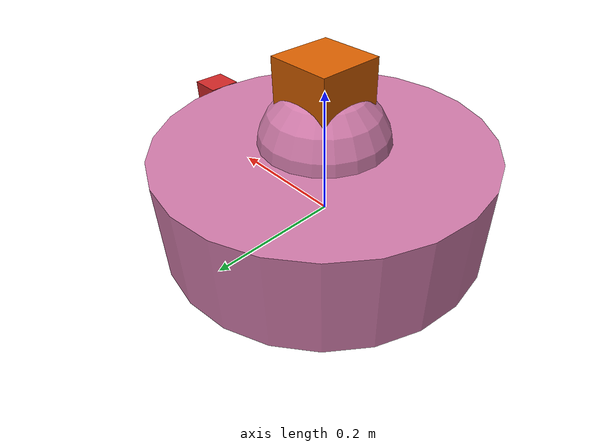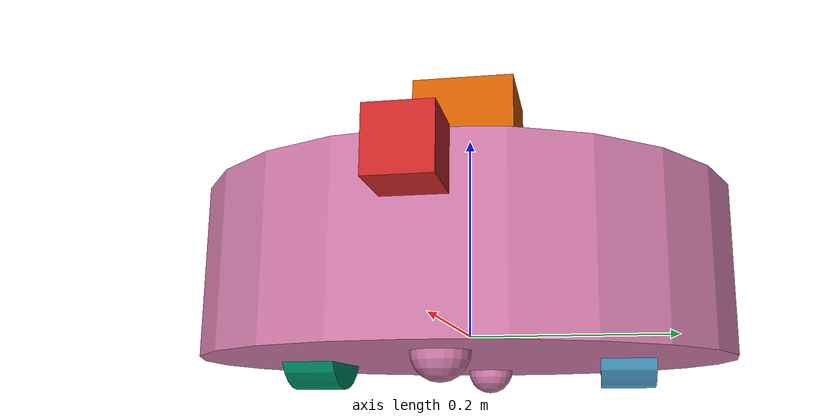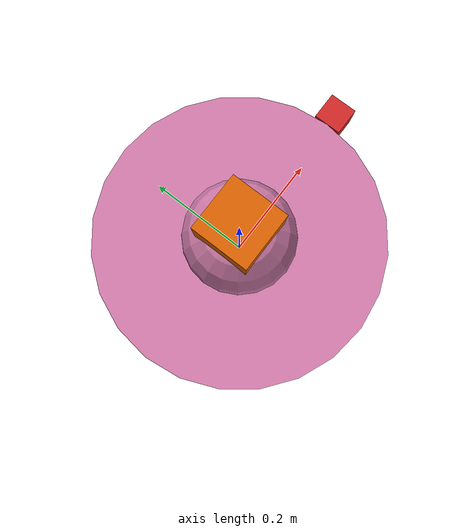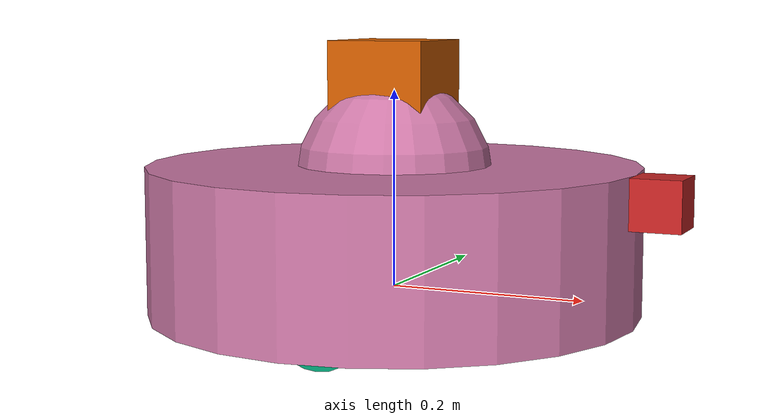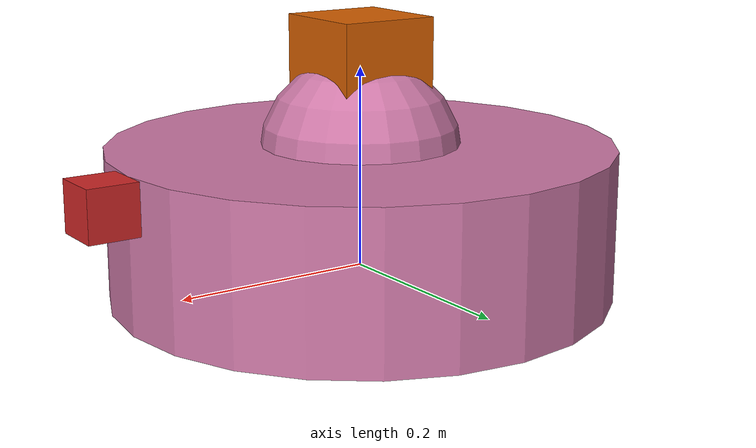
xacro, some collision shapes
<?xml version='1.0'?>
<robot name="udacity_bot"
    xmlns:xacro="http://www.ros.org/wiki/xacro">
    <xacro:include filename="$(find slam_project)/urdf/udacity_bot.gazebo"/>
    <link name="robot_footprint"></link>
    <joint name="robot_footprint_joint" type="fixed">
        <origin xyz="0 0 0" rpy="0 0 0"/>
        <parent link="robot_footprint"/>
        <child link="chassis"/>
    </joint>
    <!-- Left wheel -->
    <joint type="continuous" name="left_wheel_hinge">
        <origin xyz="0 0.15 0" rpy="0 0 0"/>
        <child link="left_wheel"/>
        <parent link="chassis"/>
        <axis xyz="0 1 0" rpy="0 0 0"/>
        <limit effort="10000" velocity="1000"/>
        <dynamics damping="1.0" friction="1.0"/>
    </joint>
    <link name='left_wheel'>
        <inertial>
            <mass value="5.0"/>
            <origin xyz="0.0 0 0" rpy=" 0 1.5707 1.5707"/>
            <inertia
          ixx="0.1" ixy="0" ixz="0"
          iyy="0.1" iyz="0"
          izz="0.1"
      />
        </inertial>
        <collision name='left_wheel_collision'>
            <origin xyz="0 0 0" rpy=" 0 1.5707 1.5707"/>
            <geometry>
                <cylinder radius="0.05" length="0.05"/>
            </geometry>
        </collision>
        <visual name='left_wheel_visual'>
            <origin xyz="0 0 0" rpy=" 0 1.5707 1.5707"/>
            <geometry>
                <cylinder radius="0.05" length="0.05"/>
            </geometry>
        </visual>
    </link>
    <!-- Right wheel -->
    <joint type="continuous" name="right_wheel_hinge">
        <origin xyz="0 -0.15 0" rpy="0 0 0"/>
        <child link="right_wheel"/>
        <parent link="chassis"/>
        <axis xyz="0 1 0" rpy="0 0 0"/>
        <limit effort="10000" velocity="1000"/>
        <dynamics damping="1.0" friction="1.0"/>
    </joint>
    <link name='right_wheel'>
        <inertial>
            <mass value="5.0"/>
            <origin xyz="0.0 0 0" rpy=" 0 1.5707 1.5707"/>
            <inertia
          ixx="0.1" ixy="0" ixz="0"
          iyy="0.1" iyz="0"
          izz="0.1"
      />
        </inertial>
        <collision name='right_wheel_collision'>
            <origin xyz="0 0 0" rpy=" 0 1.5707 1.5707"/>
            <geometry>
                <cylinder radius="0.05" length="0.05"/>
            </geometry>
        </collision>
        <visual name='right_wheel_visual'>
            <origin xyz="0 0 0" rpy=" 0 1.5707 1.5707"/>
            <geometry>
                <cylinder radius="0.05" length="0.05"/>
            </geometry>
        </visual>
    </link>
    <!-- Camera -->
    <joint type="fixed" name="camera_joint">
        <origin xyz="0.275 0 0.1" rpy="0 0 0"/>
        <child link="camera"/>
        <parent link="chassis"/>
    </joint>

    <link name="camera_rgbd_frame"></link>
    <joint name="camera_rgbd_joint" type="fixed">
        <origin rpy="-${pi/2} 0 -${pi/2}"/>
        <parent link="camera"/>
        <child link="camera_rgbd_frame"/>
    </joint>

    <link name='camera'>
        <inertial>
            <mass value="0.1"/>
            <origin xyz="0.0 0 0" rpy=" 0 0 0"/>
            <inertia
          ixx="1e-6" ixy="0" ixz="0"
          iyy="1e-6" iyz="0"
          izz="1e-6"
      />
        </inertial>
        <collision name='camera_collision'>
            <origin xyz="0 0 0" rpy=" 0 0 0"/>
            <geometry>
                <box size="0.05 0.05 0.05"/>
            </geometry>
        </collision>
        <visual name='camera_visual'>
            <origin xyz="0 0 0" rpy=" 0 0 0"/>
            <geometry>
                <box size="0.05 0.05 0.05"/>
            </geometry>
        </visual>
    </link>
    <!-- Laser scanner -->
    <joint type="fixed" name="hokuyo_joint">
        <origin xyz="0 0 0.20" rpy="0 0 0"/>
        <child link="hokuyo"/>
        <parent link="chassis"/>
    </joint>
    <link name='hokuyo'>
        <inertial>
            <mass value="0.1"/>
            <origin xyz="0.0 0 0" rpy=" 0 0 0"/>
            <inertia
          ixx="1e-6" ixy="0" ixz="0"
          iyy="1e-6" iyz="0"
          izz="1e-6"
      />
        </inertial>
        <collision name='hokuyo_collision'>
            <origin xyz="0 0 0" rpy=" 0 0 0"/>
            <geometry>
                <box size="0.1 0.1 0.1"/>
            </geometry>
        </collision>
        <visual name='hokuyo_visual'>
            <origin xyz="0 0 0" rpy=" 0 0 0"/>
            <geometry>
                <mesh filename="package://slam_project/meshes/hokuyo.dae"/>
            </geometry>
        </visual>
    </link>
    <!-- Chassis -->
    <link name='chassis'>
        <pose>0 0 0.1 0 0 0</pose>
        <inertial>
            <mass value="15.0"/>
            <origin xyz="0.0 0 0" rpy=" 0 0 0"/>
            <inertia
          ixx="0.1" ixy="0" ixz="0"
          iyy="0.1" iyz="0"
          izz="0.1"
      />
        </inertial>
        <collision name='chassis_collision'>
            <origin xyz="0 0 0.05" rpy=" 0 0 0"/>
            <geometry>
                <cylinder radius="0.25" length="0.15"/>
            </geometry>
        </collision>
        <visual name='chassis_visual'>
            <origin xyz="0 0 0.05" rpy=" 0 0 0"/>
            <geometry>
                <cylinder radius="0.25" length="0.15"/>
            </geometry>
        </visual>
        <collision name='chassis_dome_collision'>
            <origin xyz="0 0 0.1125" rpy=" 0 0 0"/>
            <geometry>
                <sphere radius="0.1"/>
            </geometry>
        </collision>
        <visual name='chassis_dome_visual'>
            <origin xyz="0 0 0.1125" rpy=" 0 0 0"/>
            <geometry>
                <sphere radius="0.1"/>
            </geometry>
        </visual>
        <collision name='back_caster_collision'>
            <origin xyz="-0.15 0 -0.025" rpy=" 0 0 0"/>
            <geometry>
                <sphere radius="0.02499"/>
            </geometry>
        </collision>
        <visual name='back_caster_visual'>
            <origin xyz="-0.15 0 -0.025" rpy=" 0 0 0"/>
            <geometry>
                <sphere radius="0.025"/>
            </geometry>
        </visual>
        <collision name='front_caster_collision'>
            <origin xyz="0.15 0 -0.025" rpy=" 0 0 0"/>
            <geometry>
                <sphere radius="0.02499"/>
            </geometry>
        </collision>
        <visual name='front_caster_visual'>
            <origin xyz="0.15 0 -0.025" rpy=" 0 0 0"/>
            <geometry>
                <sphere radius="0.025"/>
            </geometry>
        </visual>
    </link>
</robot>
